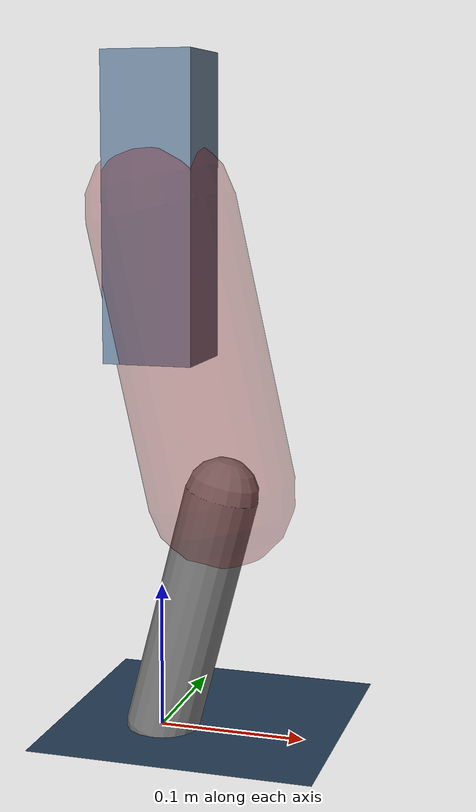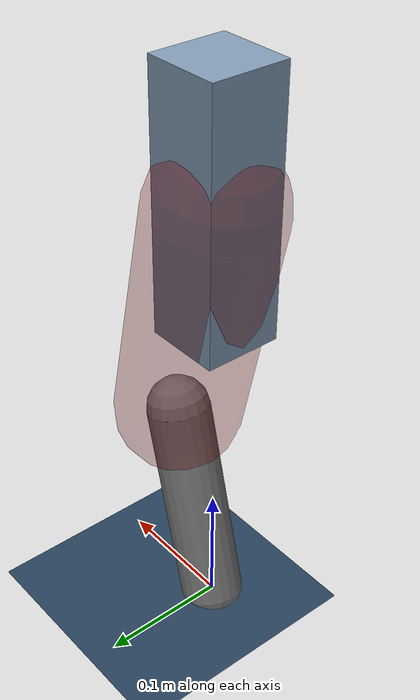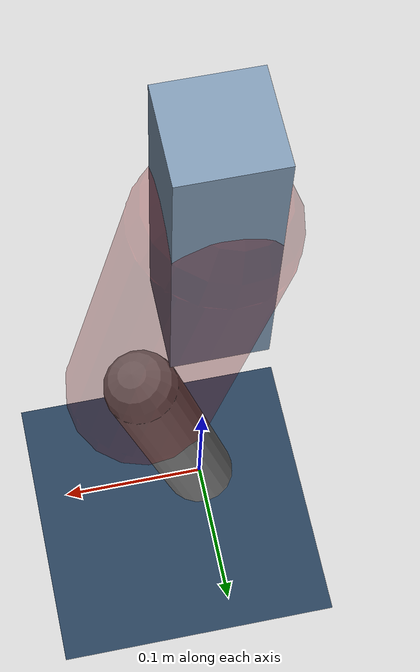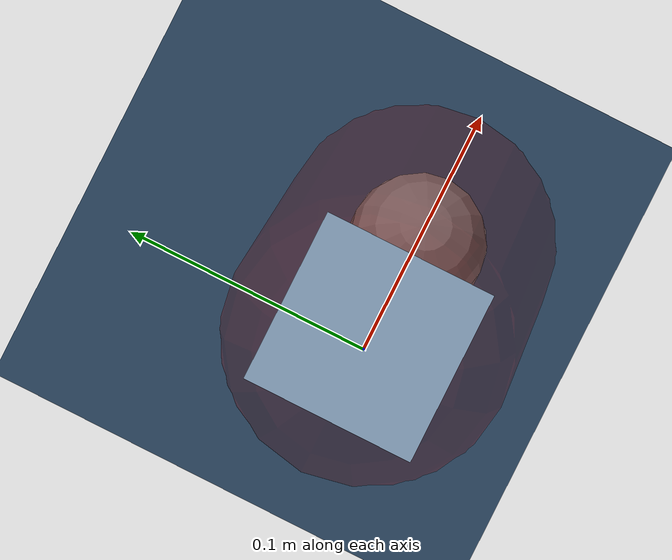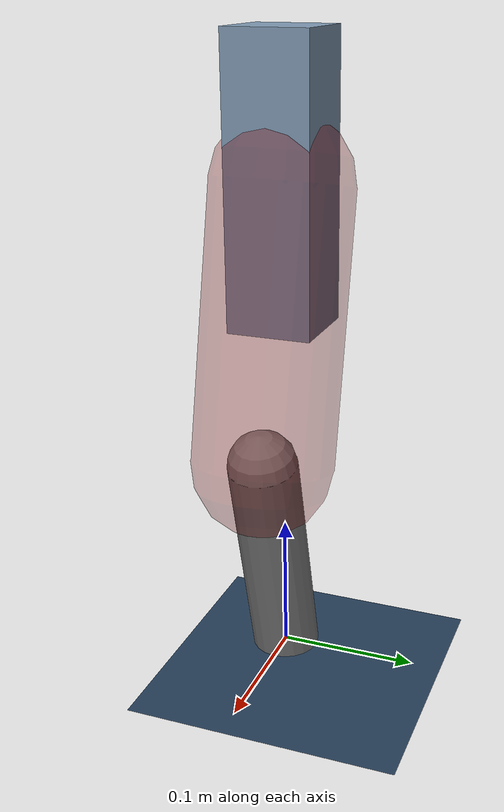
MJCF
<mujoco model="Hopper2D">
	<compiler inertiafromgeom="true" angle="radian" />
	<option timestep="0.001" integrator="implicit" cone="elliptic" solver="Newton" tolerance="1e-10" />

	<default>
		<geom contype="1" conaffinity="1" condim="3" friction="2 0.005 0.0001" solref="0.005 1" />
		<joint limited="true" damping="0.1" />
	</default>

	<asset>
		<texture name="skybox" type="skybox" builtin="gradient" rgb1=".4 .6 .8" rgb2="0 0 0" width="800" height="800" />
		<texture name="grid" type="2d" builtin="checker" rgb1=".1 .2 .3" rgb2=".2 .3 .4" width="300" height="300" mark="edge" markrgb=".2 .3 .4" />
		<material name="ground" texture="grid" texrepeat="1 1" texuniform="true" reflectance="0.1" />
		<material name="leg" rgba="0.5 0.6 0.7 1" />
	</asset>

	<worldbody>

		<geom name="floor" type="plane" size="5 5 0.25" material="ground" />

		<light directional="false" diffuse="0.8 0.8 0.8" specular="0.3 0.3 0.3" pos="0 0 2" dir="0 0 -1" />
		<light mode="targetbodycom" target="base" directional="false" diffuse="0.8 0.8 0.8" specular="0.3 0.3 0.3" pos="0 0 2" dir="0 0 -1" />

		<camera name="fixed" pos="0 -2 1" xyaxes="1 0 0 0 0 1" />
		<camera name="tracking" mode="trackcom" pos="0 -3 1" />

		<body name="root" pos="0 0 0.35460326534155584">
			<joint name="slide_x" type="slide" axis="1 0 0" range="-100 100" />
			<joint name="slide_z" type="slide" axis="0 0 1" range="0 10" />

			<body name="base" pos="0 0 0">
				<geom name="torso" type="box" size="0.03 0.03 0.1" mass="2.542" material="leg" />

				<body name="link1" pos="0 0 0" euler="0 1.3503321442766674 0">
					<joint type="hinge" axis="0 -1 0" pos="0 0 0" name="hinge1" limited="true" range="-3.14 3.14" stiffness="0" damping="0.1" />
					<geom name="thigh" type="capsule" fromto="0 0 0 0.19351402501124768 0 0" size="0.05" rgba="0.5 0 0 0.3" mass="0.7135850625281192" />

					<body name="link2" pos="0.19351402501124768 0 0" euler="0 0.4704038196379076 0">
						<joint type="hinge" axis="0 -1 0" pos="0 0 0" name="hinge2" limited="true" range="-3.14 3.14" stiffness="0" damping="0.1" />
						<geom name="shank" type="capsule" fromto="0 0 0 0.1710892403303082 0 0" size="0.025" mass="0.3761803162972774" />

					</body>
				</body>
			</body>
		</body>
	</worldbody>

	<actuator>
		<motor name="torque1" joint="hinge1" ctrlrange="-72.83985886927447 72.83985886927447" ctrllimited="true" gear="1" />
		<motor name="torque2" joint="hinge2" ctrlrange="-75.54502442360618 75.54502442360618" ctrllimited="true" gear="1" />
	</actuator>
</mujoco>
